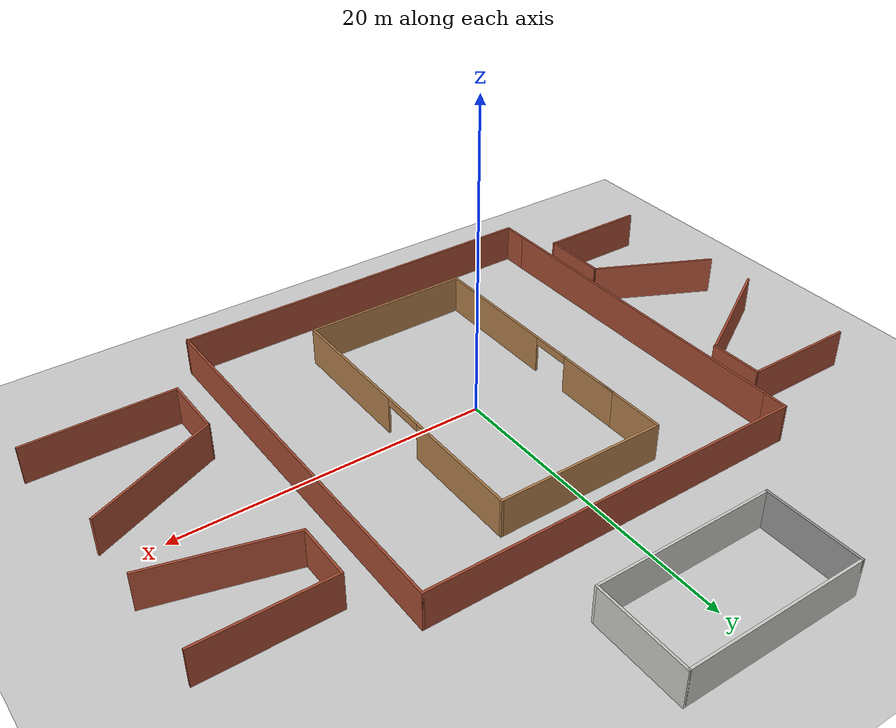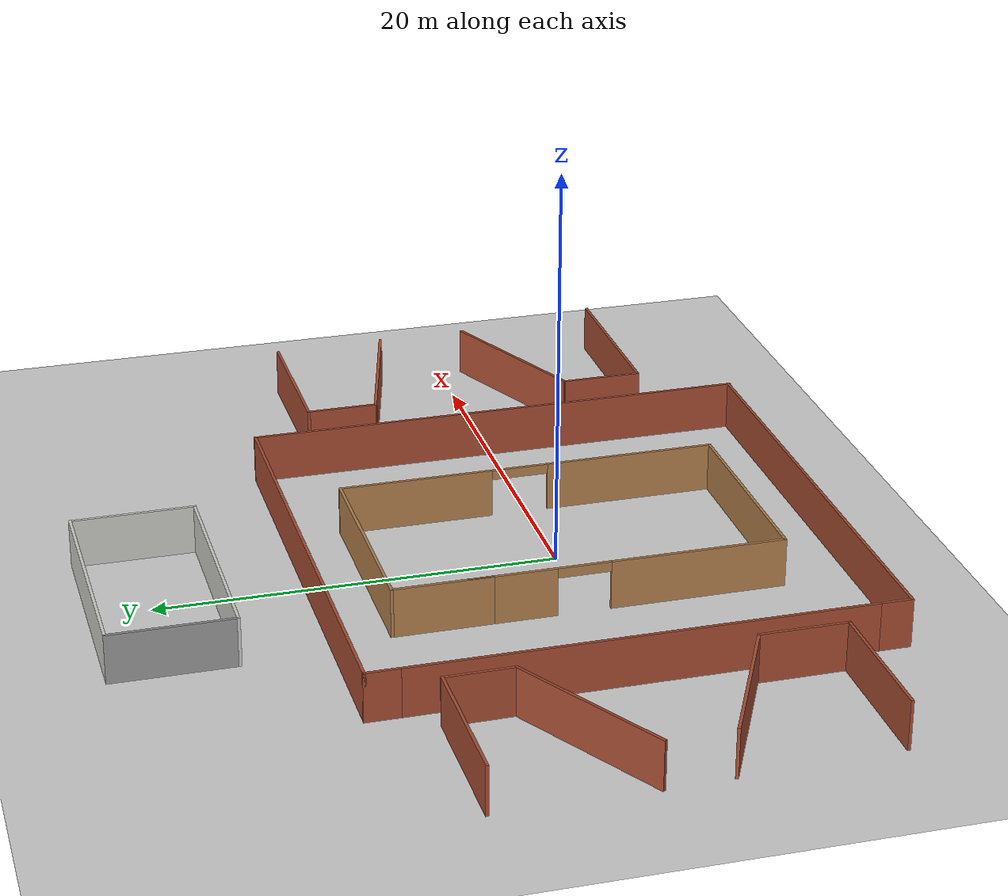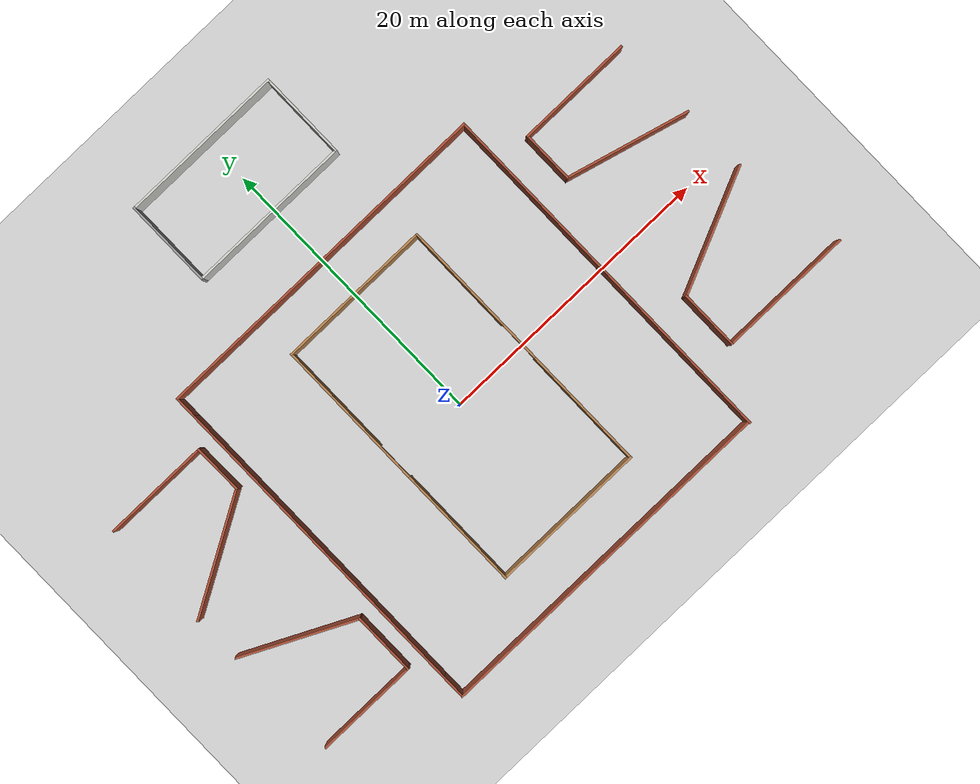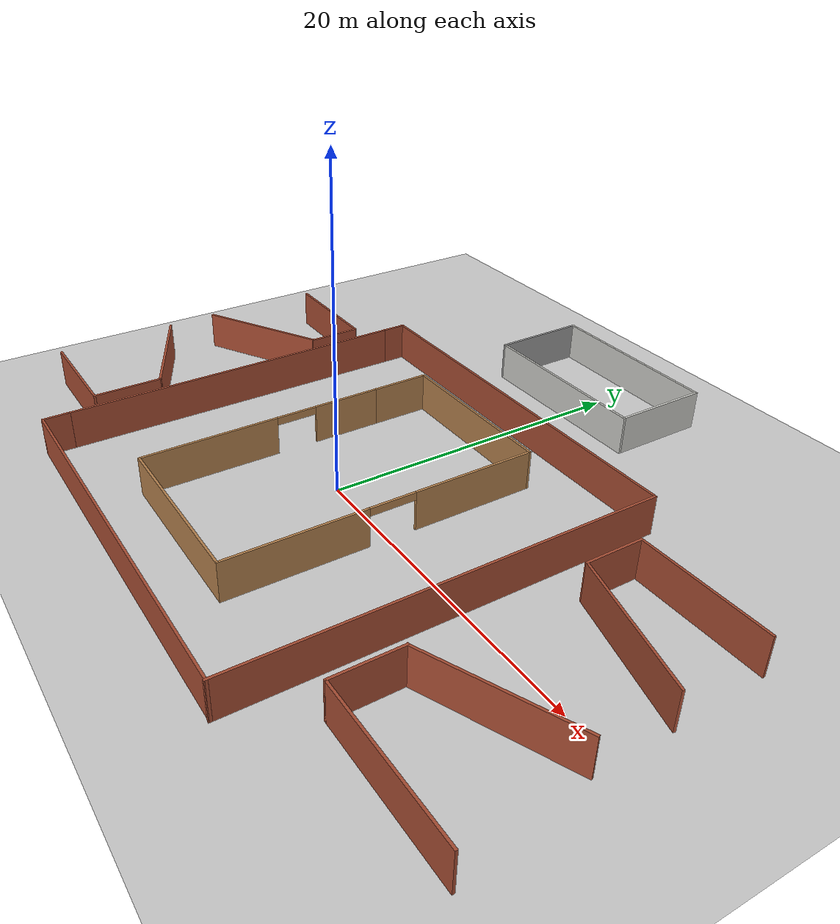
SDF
<sdf version="1.7">
 <world name="default">
  <light name="sun" type="directional">
   <pose>0 0 10 0 -0 0</pose>
   <diffuse>0.8 0.8 0.8 1</diffuse>
   <specular>0.2 0.2 0.2 1</specular>
   <attenuation>
    <range>1000</range>
    <constant>0.9</constant>
    <linear>0.01</linear>
    <quadratic>0.001</quadratic>
   </attenuation>
   <direction>-0.5 0.1 -0.9</direction>
   <spot><inner_angle>0</inner_angle><outer_angle>0</outer_angle><falloff>0</falloff></spot>
  </light>
  <model name="ground_plane">
   <static>1</static>
   <link name="link">
    <collision name="collision">
     <geometry><plane><normal>0 0 1</normal><size>100 100</size></plane></geometry>
     <surface><friction><ode><mu>100</mu><mu2>50</mu2></ode></friction></surface>
    </collision>
    <visual name="visual">
     <cast_shadows>0</cast_shadows>
     <geometry><plane><normal>0 0 1</normal><size>100 100</size></plane></geometry>
     <material>
      <script><uri>file://media/materials/scripts/gazebo.material</uri><name>Gazebo/Grey</name></script>
     </material>
    </visual>
   </link>
  </model>
  <gravity>0 0 -9.8</gravity>
  <magnetic_field>6e-06 2.3e-05 -4.2e-05</magnetic_field>
  <atmosphere type="adiabatic"/>
  <physics type="ode">
   <max_step_size>0.001</max_step_size>
   <real_time_factor>1</real_time_factor>
   <real_time_update_rate>1000</real_time_update_rate>
  </physics>
  <scene><ambient>0.4 0.4 0.4 1</ambient><background>0.7 0.7 0.7 1</background><shadows>1</shadows></scene>
  <audio><device>default</device></audio>
  <spherical_coordinates>
   <surface_model>EARTH_WGS84</surface_model>
   <latitude_deg>0</latitude_deg>
   <longitude_deg>0</longitude_deg>
   <elevation>0</elevation>
   <heading_deg>0</heading_deg>
  </spherical_coordinates>
  <model name="charusat">
   <pose>1.5387 6.61783 0 0 -0 0</pose>
   <link name="Wall_12">
    <collision name="Wall_12_Collision">
     <geometry><box><size>3.54796 0.15 2.5</size></box></geometry>
     <pose>0 0 1.25 0 -0 0</pose>
    </collision>
    <visual name="Wall_12_Visual">
     <pose>0 0 1.25 0 -0 0</pose>
     <geometry><box><size>3.54796 0.15 2.5</size></box></geometry>
     <material>
      <script><uri>file://media/materials/scripts/gazebo.material</uri><name>Gazebo/Bricks</name></script>
      <ambient>1 1 1 1</ambient>
     </material>
     <meta><layer>0</layer></meta>
    </visual>
    <pose>-15.2631 0.985248 0 0 -0 -1.55889</pose>
   </link>
   <link name="Wall_13">
    <collision name="Wall_13_Collision">
     <geometry><box><size>8.75 0.15 2.5</size></box></geometry>
     <pose>0 0 1.25 0 -0 0</pose>
    </collision>
    <visual name="Wall_13_Visual">
     <pose>0 0 1.25 0 -0 0</pose>
     <geometry><box><size>8.75 0.15 2.5</size></box></geometry>
     <material>
      <script><uri>file://media/materials/scripts/gazebo.material</uri><name>Gazebo/Bricks</name></script>
      <ambient>1 1 1 1</ambient>
     </material>
     <meta><layer>0</layer></meta>
    </visual>
    <pose>-19.0072 -2.86361 0 0 -0 -2.61799</pose>
   </link>
   <link name="Wall_16">
    <collision name="Wall_16_Collision">
     <geometry><box><size>4.5 0.15 2.5</size></box></geometry>
     <pose>0 0 1.25 0 -0 0</pose>
    </collision>
    <visual name="Wall_16_Visual">
     <pose>0 0 1.25 0 -0 0</pose>
     <geometry><box><size>4.5 0.15 2.5</size></box></geometry>
     <material>
      <script><uri>file://media/materials/scripts/gazebo.material</uri><name>Gazebo/Bricks</name></script>
      <ambient>1 1 1 1</ambient>
     </material>
     <meta><layer>0</layer></meta>
    </visual>
    <pose>-15.3222 -14.1198 0 0 -0 -1.5708</pose>
   </link>
   <link name="Wall_17">
    <collision name="Wall_17_Collision">
     <geometry><box><size>7.25 0.15 2.5</size></box></geometry>
     <pose>0 0 1.25 0 -0 0</pose>
    </collision>
    <visual name="Wall_17_Visual">
     <pose>0 0 1.25 0 -0 0</pose>
     <geometry><box><size>7.25 0.15 2.5</size></box></geometry>
     <material>
      <script><uri>file://media/materials/scripts/gazebo.material</uri><name>Gazebo/Bricks</name></script>
      <ambient>1 1 1 1</ambient>
     </material>
     <meta><layer>0</layer></meta>
    </visual>
    <pose>-18.8722 -16.2948 0 0 -0 3.14159</pose>
   </link>
   <link name="Wall_19">
    <collision name="Wall_19_Collision">
     <geometry><box><size>8.28342 0.15 2.5</size></box></geometry>
     <pose>0 0 1.25 0 -0 0</pose>
    </collision>
    <visual name="Wall_19_Visual">
     <pose>0 0 1.25 0 -0 0</pose>
     <geometry><box><size>8.28342 0.15 2.5</size></box></geometry>
     <material>
      <script><uri>file://media/materials/scripts/gazebo.material</uri><name>Gazebo/Bricks</name></script>
      <ambient>1 1 1 1</ambient>
     </material>
     <meta><layer>0</layer></meta>
    </visual>
    <pose>-18.9724 -10.1521 0 0 -0 -0.456495</pose>
   </link>
   <link name="Wall_21">
    <collision name="Wall_21_Collision">
     <geometry><box><size>6.25 0.15 2.5</size></box></geometry>
     <pose>0 0 1.25 0 -0 0</pose>
    </collision>
    <visual name="Wall_21_Visual">
     <pose>0 0 1.25 0 -0 0</pose>
     <geometry><box><size>6.25 0.15 2.5</size></box></geometry>
     <material>
      <script><uri>file://media/materials/scripts/gazebo.material</uri><name>Gazebo/Grey</name></script>
      <ambient>1 1 1 1</ambient>
     </material>
     <meta><layer>0</layer></meta>
    </visual>
    <pose>-7.73719 13.3304 0 0 -0 1.5708</pose>
   </link>
   <link name="Wall_22">
    <collision name="Wall_22_Collision">
     <geometry><box><size>11.75 0.15 2.5</size></box></geometry>
     <pose>0 0 1.25 0 -0 0</pose>
    </collision>
    <visual name="Wall_22_Visual">
     <pose>0 0 1.25 0 -0 0</pose>
     <geometry><box><size>11.75 0.15 2.5</size></box></geometry>
     <material>
      <script><uri>file://media/materials/scripts/gazebo.material</uri><name>Gazebo/CeilingTiled</name></script>
      <ambient>1 1 1 1</ambient>
     </material>
     <meta><layer>0</layer></meta>
    </visual>
    <pose>-1.93719 16.3804 0 0 -0 0</pose>
   </link>
   <link name="Wall_23">
    <collision name="Wall_23_Collision">
     <geometry><box><size>6.25 0.15 2.5</size></box></geometry>
     <pose>0 0 1.25 0 -0 0</pose>
    </collision>
    <visual name="Wall_23_Visual">
     <pose>0 0 1.25 0 -0 0</pose>
     <geometry><box><size>6.25 0.15 2.5</size></box></geometry>
     <material>
      <script><uri>file://media/materials/scripts/gazebo.material</uri><name>Gazebo/CeilingTiled</name></script>
      <ambient>1 1 1 1</ambient>
     </material>
     <meta><layer>0</layer></meta>
    </visual>
    <pose>3.86281 13.3304 0 0 -0 -1.5708</pose>
   </link>
   <link name="Wall_24">
    <collision name="Wall_24_Collision">
     <geometry><box><size>11.75 0.15 2.5</size></box></geometry>
     <pose>0 0 1.25 0 -0 0</pose>
    </collision>
    <visual name="Wall_24_Visual">
     <pose>0 0 1.25 0 -0 0</pose>
     <geometry><box><size>11.75 0.15 2.5</size></box></geometry>
     <material>
      <script><uri>file://media/materials/scripts/gazebo.material</uri><name>Gazebo/CeilingTiled</name></script>
      <ambient>1 1 1 1</ambient>
     </material>
     <meta><layer>0</layer></meta>
    </visual>
    <pose>-1.93719 10.2804 0 0 -0 3.14159</pose>
   </link>
   <link name="Wall_26">
    <collision name="Wall_26_Collision">
     <geometry><box><size>8.25 0.15 2.5</size></box></geometry>
     <pose>0 0 1.25 0 -0 0</pose>
    </collision>
    <visual name="Wall_26_Visual">
     <pose>0 0 1.25 0 -0 0</pose>
     <geometry><box><size>8.25 0.15 2.5</size></box></geometry>
     <material>
      <script><uri>file://media/materials/scripts/gazebo.material</uri><name>Gazebo/Bricks</name></script>
      <ambient>1 1 1 1</ambient>
     </material>
     <meta><layer>0</layer></meta>
    </visual>
    <pose>17.219 2.61548 0 0 -0 3.14159</pose>
   </link>
   <link name="Wall_27">
    <collision name="Wall_27_Collision">
     <geometry><box><size>3.75 0.15 2.5</size></box></geometry>
     <pose>0 0 1.25 0 -0 0</pose>
    </collision>
    <visual name="Wall_27_Visual">
     <pose>0 0 1.25 0 -0 0</pose>
     <geometry><box><size>3.75 0.15 2.5</size></box></geometry>
     <material>
      <script><uri>file://media/materials/scripts/gazebo.material</uri><name>Gazebo/Bricks</name></script>
      <ambient>1 1 1 1</ambient>
     </material>
     <meta><layer>0</layer></meta>
    </visual>
    <pose>13.169 0.815483 0 0 -0 -1.5708</pose>
   </link>
   <link name="Wall_28">
    <collision name="Wall_28_Collision">
     <geometry><box><size>8.75 0.15 2.5</size></box></geometry>
     <pose>0 0 1.25 0 -0 0</pose>
    </collision>
    <visual name="Wall_28_Visual">
     <pose>0 0 1.25 0 -0 0</pose>
     <geometry><box><size>8.75 0.15 2.5</size></box></geometry>
     <material>
      <script><uri>file://media/materials/scripts/gazebo.material</uri><name>Gazebo/Bricks</name></script>
      <ambient>1 1 1 1</ambient>
     </material>
     <meta><layer>0</layer></meta>
    </visual>
    <pose>17.3225 -2.09744 0 0 -0 -0.261799</pose>
   </link>
   <link name="Wall_3">
    <pose>-6.95061 -8.58039 0 0 -0 -1.5708</pose>
    <visual name="Wall_3_Visual_0">
     <pose>-5.69935 0 1.25 0 -0 0</pose>
     <geometry><box><size>4.3513 0.15 2.5</size></box></geometry>
     <material>
      <script><uri>file://media/materials/scripts/gazebo.material</uri><name>Gazebo/Wood</name></script>
      <ambient>1 1 1 1</ambient>
     </material>
     <meta><layer>0</layer></meta>
    </visual>
    <collision name="Wall_3_Collision_0">
     <geometry><box><size>4.3513 0.15 2.5</size></box></geometry>
     <pose>-5.69935 0 1.25 0 -0 0</pose>
    </collision>
    <visual name="Wall_3_Visual_1">
     <pose>3.48528 0 1.25 0 -0 0</pose>
     <geometry><box><size>8.77945 0.15 2.5</size></box></geometry>
     <material>
      <script><uri>file://media/materials/scripts/gazebo.material</uri><name>Gazebo/Wood</name></script>
      <ambient>1 1 1 1</ambient>
     </material>
     <meta><layer>0</layer></meta>
    </visual>
    <collision name="Wall_3_Collision_1">
     <geometry><box><size>8.77945 0.15 2.5</size></box></geometry>
     <pose>3.48528 0 1.25 0 -0 0</pose>
    </collision>
    <visual name="Wall_3_Visual_2">
     <pose>-2.21408 0 2.25 0 -0 0</pose>
     <geometry><box><size>2.61925 0.15 0.5</size></box></geometry>
     <material>
      <script><uri>file://media/materials/scripts/gazebo.material</uri><name>Gazebo/Wood</name></script>
      <ambient>1 1 1 1</ambient>
     </material>
     <meta><layer>0</layer></meta>
    </visual>
    <collision name="Wall_3_Collision_2">
     <geometry><box><size>2.61925 0.15 0.5</size></box></geometry>
     <pose>-2.21408 0 2.25 0 -0 0</pose>
    </collision>
   </link>
   <link name="Wall_30">
    <collision name="Wall_30_Collision">
     <geometry><box><size>4.25 0.15 2.5</size></box></geometry>
     <pose>0 0 1.25 0 -0 0</pose>
    </collision>
    <visual name="Wall_30_Visual">
     <pose>0 0 1.25 0 -0 0</pose>
     <geometry><box><size>4.25 0.15 2.5</size></box></geometry>
     <material>
      <script><uri>file://media/materials/scripts/gazebo.material</uri><name>Gazebo/Bricks</name></script>
      <ambient>1 1 1 1</ambient>
     </material>
     <meta><layer>0</layer></meta>
    </visual>
    <pose>13.4086 -13.5645 0 0 -0 -1.5708</pose>
   </link>
   <link name="Wall_31">
    <collision name="Wall_31_Collision">
     <geometry><box><size>9.5 0.15 2.5</size></box></geometry>
     <pose>0 0 1.25 0 -0 0</pose>
    </collision>
    <visual name="Wall_31_Visual">
     <pose>0 0 1.25 0 -0 0</pose>
     <geometry><box><size>9.5 0.15 2.5</size></box></geometry>
     <material>
      <script><uri>file://media/materials/scripts/gazebo.material</uri><name>Gazebo/Bricks</name></script>
      <ambient>1 1 1 1</ambient>
     </material>
     <meta><layer>0</layer></meta>
    </visual>
    <pose>18.0836 -15.6145 0 0 -0 0</pose>
   </link>
   <link name="Wall_39">
    <collision name="Wall_39_Collision">
     <geometry><box><size>9.02569 0.15 2.5</size></box></geometry>
     <pose>0 0 1.25 0 -0 0</pose>
    </collision>
    <visual name="Wall_39_Visual">
     <pose>0 0 1.25 0 -0 0</pose>
     <geometry><box><size>9.02569 0.15 2.5</size></box></geometry>
     <material>
      <script><uri>file://media/materials/scripts/gazebo.material</uri><name>Gazebo/Bricks</name></script>
      <ambient>1 1 1 1</ambient>
     </material>
     <meta><layer>0</layer></meta>
    </visual>
    <pose>17.4596 -9.70242 0 0 -0 -2.72097</pose>
   </link>
   <link name="Wall_4">
    <collision name="Wall_4_Collision">
     <geometry><box><size>11 0.15 2.5</size></box></geometry>
     <pose>0 0 1.25 0 -0 0</pose>
    </collision>
    <visual name="Wall_4_Visual">
     <pose>0 0 1.25 0 -0 0</pose>
     <geometry><box><size>11 0.15 2.5</size></box></geometry>
     <material>
      <script><uri>file://media/materials/scripts/gazebo.material</uri><name>Gazebo/Wood</name></script>
      <ambient>1 1 1 1</ambient>
     </material>
     <meta><layer>0</layer></meta>
    </visual>
    <pose>-1.52561 -16.3804 0 0 -0 0</pose>
   </link>
   <link name="Wall_5">
    <pose>3.8994 -6.70539 0 0 -0 1.5708</pose>
    <visual name="Wall_5_Visual_0">
     <pose>-5.37933 0 1.25 0 -0 0</pose>
     <geometry><box><size>8.74134 0.15 2.5</size></box></geometry>
     <material>
      <script><uri>file://media/materials/scripts/gazebo.material</uri><name>Gazebo/Wood</name></script>
      <ambient>1 1 1 1</ambient>
     </material>
     <meta><layer>0</layer></meta>
    </visual>
    <collision name="Wall_5_Collision_0">
     <geometry><box><size>8.74134 0.15 2.5</size></box></geometry>
     <pose>-5.37933 0 1.25 0 -0 0</pose>
    </collision>
    <visual name="Wall_5_Visual_1">
     <pose>5.81916 0 1.25 0 -0 0</pose>
     <geometry><box><size>7.86169 0.15 2.5</size></box></geometry>
     <material>
      <script><uri>file://media/materials/scripts/gazebo.material</uri><name>Gazebo/Wood</name></script>
      <ambient>1 1 1 1</ambient>
     </material>
     <meta><layer>0</layer></meta>
    </visual>
    <collision name="Wall_5_Collision_1">
     <geometry><box><size>7.86169 0.15 2.5</size></box></geometry>
     <pose>5.81916 0 1.25 0 -0 0</pose>
    </collision>
    <visual name="Wall_5_Visual_2">
     <pose>0.439824 0 2.25 0 -0 0</pose>
     <geometry><box><size>2.89697 0.15 0.5</size></box></geometry>
     <material>
      <script><uri>file://media/materials/scripts/gazebo.material</uri><name>Gazebo/Wood</name></script>
      <ambient>1 1 1 1</ambient>
     </material>
     <meta><layer>0</layer></meta>
    </visual>
    <collision name="Wall_5_Collision_2">
     <geometry><box><size>2.89697 0.15 0.5</size></box></geometry>
     <pose>0.439824 0 2.25 0 -0 0</pose>
    </collision>
   </link>
   <link name="Wall_6">
    <collision name="Wall_6_Collision">
     <geometry><box><size>11 0.15 2.5</size></box></geometry>
     <pose>0 0 1.25 0 -0 0</pose>
    </collision>
    <visual name="Wall_6_Visual">
     <pose>0 0 1.25 0 -0 0</pose>
     <geometry><box><size>11 0.15 2.5</size></box></geometry>
     <material>
      <script><uri>file://media/materials/scripts/gazebo.material</uri><name>Gazebo/Wood</name></script>
      <ambient>1 1 1 1</ambient>
     </material>
     <meta><layer>0</layer></meta>
    </visual>
    <pose>-1.52561 2.96961 0 0 -0 3.14159</pose>
   </link>
   <link name="Wall_7">
    <collision name="Wall_7_Collision">
     <geometry><box><size>5 0.15 2.5</size></box></geometry>
     <pose>0 0 1.25 0 -0 0</pose>
    </collision>
    <visual name="Wall_7_Visual">
     <pose>0 0 1.25 0 -0 0</pose>
     <geometry><box><size>5 0.15 2.5</size></box></geometry>
     <material>
      <script><uri>file://media/materials/scripts/gazebo.material</uri><name>Gazebo/Wood</name></script>
      <ambient>1 1 1 1</ambient>
     </material>
     <meta><layer>0</layer></meta>
    </visual>
    <pose>-6.95061 0.544613 0 0 -0 -1.5708</pose>
   </link>
   <link name="Wall_9">
    <collision name="Wall_9_Collision">
     <geometry><box><size>7.5 0.15 2.5</size></box></geometry>
     <pose>0 0 1.25 0 -0 0</pose>
    </collision>
    <visual name="Wall_9_Visual">
     <pose>0 0 1.25 0 -0 0</pose>
     <geometry><box><size>7.5 0.15 2.5</size></box></geometry>
     <material>
      <script><uri>file://media/materials/scripts/gazebo.material</uri><name>Gazebo/Bricks</name></script>
      <ambient>1 1 1 1</ambient>
     </material>
     <meta><layer>0</layer></meta>
    </visual>
    <pose>-18.9583 2.68411 0 0 -0 0</pose>
   </link>
   <static>1</static>
  </model>
  <model name="boundry">
   <pose>-0.083913 -0.398215 0 0 -0 0</pose>
   <link name="Wall_10">
    <collision name="Wall_10_Collision">
     <geometry><box><size>25 0.15 2.5</size></box></geometry>
     <pose>0 0 1.25 0 -0 0</pose>
    </collision>
    <visual name="Wall_10_Visual">
     <pose>0 0 1.25 0 -0 0</pose>
     <geometry><box><size>25 0.15 2.5</size></box></geometry>
     <material>
      <script><uri>file://media/materials/scripts/gazebo.material</uri><name>Gazebo/Bricks</name></script>
      <ambient>1 1 1 1</ambient>
     </material>
     <meta><layer>0</layer></meta>
    </visual>
    <pose>0 12.925 0 0 -0 0</pose>
   </link>
   <link name="Wall_11">
    <collision name="Wall_11_Collision">
     <geometry><box><size>26 0.15 2.5</size></box></geometry>
     <pose>0 0 1.25 0 -0 0</pose>
    </collision>
    <visual name="Wall_11_Visual">
     <pose>0 0 1.25 0 -0 0</pose>
     <geometry><box><size>26 0.15 2.5</size></box></geometry>
     <material>
      <script><uri>file://media/materials/scripts/gazebo.material</uri><name>Gazebo/Bricks</name></script>
      <ambient>1 1 1 1</ambient>
     </material>
     <meta><layer>0</layer></meta>
    </visual>
    <pose>12.425 0 0 0 -0 -1.5708</pose>
   </link>
   <link name="Wall_5">
    <collision name="Wall_5_Collision">
     <geometry><box><size>22.75 0.15 2.5</size></box></geometry>
     <pose>0 0 1.25 0 -0 0</pose>
    </collision>
    <visual name="Wall_5_Visual">
     <pose>0 0 1.25 0 -0 0</pose>
     <geometry><box><size>22.75 0.15 2.5</size></box></geometry>
     <material>
      <script><uri>file://media/materials/scripts/gazebo.material</uri><name>Gazebo/Bricks</name></script>
      <ambient>1 1 1 1</ambient>
     </material>
     <meta><layer>0</layer></meta>
    </visual>
    <pose>-12.425 0.025 0 0 -0 -1.5708</pose>
   </link>
   <link name="Wall_6">
    <collision name="Wall_6_Collision">
     <geometry><box><size>1.75 0.15 2.5</size></box></geometry>
     <pose>0 0 1.25 0 -0 0</pose>
    </collision>
    <visual name="Wall_6_Visual">
     <pose>0 0 1.25 0 -0 0</pose>
     <geometry><box><size>1.75 0.15 2.5</size></box></geometry>
     <material>
      <script><uri>file://media/materials/scripts/gazebo.material</uri><name>Gazebo/Bricks</name></script>
      <ambient>1 1 1 1</ambient>
     </material>
     <meta><layer>0</layer></meta>
    </visual>
    <pose>-12.425 -12.075 0 0 -0 -1.5708</pose>
   </link>
   <link name="Wall_7">
    <collision name="Wall_7_Collision">
     <geometry><box><size>25 0.15 2.5</size></box></geometry>
     <pose>0 0 1.25 0 -0 0</pose>
    </collision>
    <visual name="Wall_7_Visual">
     <pose>0 0 1.25 0 -0 0</pose>
     <geometry><box><size>25 0.15 2.5</size></box></geometry>
     <material>
      <script><uri>file://media/materials/scripts/gazebo.material</uri><name>Gazebo/Bricks</name></script>
      <ambient>1 1 1 1</ambient>
     </material>
     <meta><layer>0</layer></meta>
    </visual>
    <pose>0 -12.875 0 0 -0 0</pose>
   </link>
   <link name="Wall_9">
    <collision name="Wall_9_Collision">
     <geometry><box><size>1.75 0.15 2.5</size></box></geometry>
     <pose>0 0 1.25 0 -0 0</pose>
    </collision>
    <visual name="Wall_9_Visual">
     <pose>0 0 1.25 0 -0 0</pose>
     <geometry><box><size>1.75 0.15 2.5</size></box></geometry>
     <material>
      <script><uri>file://media/materials/scripts/gazebo.material</uri><name>Gazebo/Bricks</name></script>
      <ambient>1 1 1 1</ambient>
     </material>
     <meta><layer>0</layer></meta>
    </visual>
    <pose>-12.425 12.125 0 0 -0 1.5708</pose>
   </link>
   <static>1</static>
  </model>
 </world>
</sdf>
